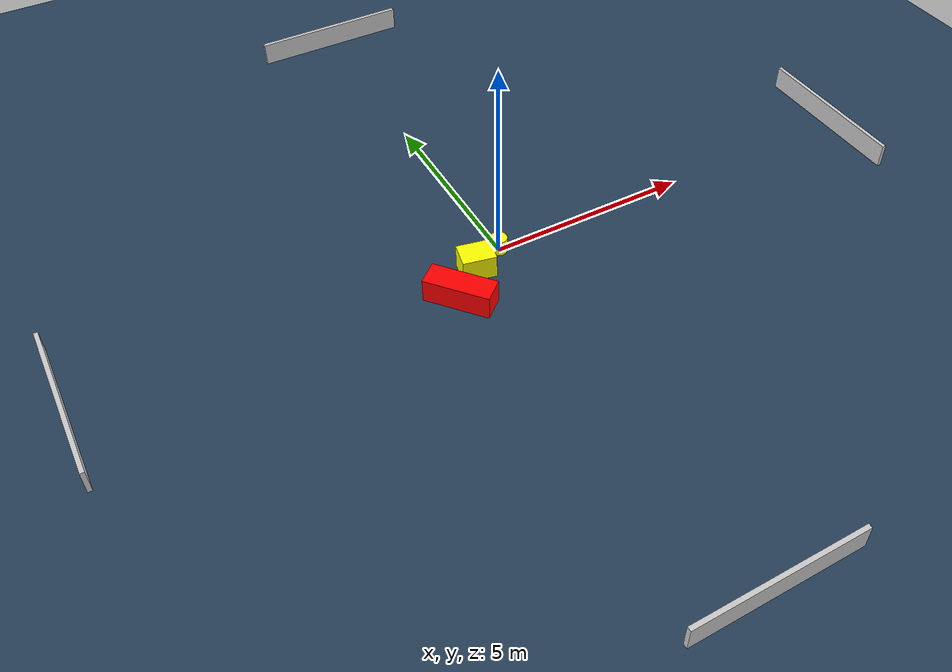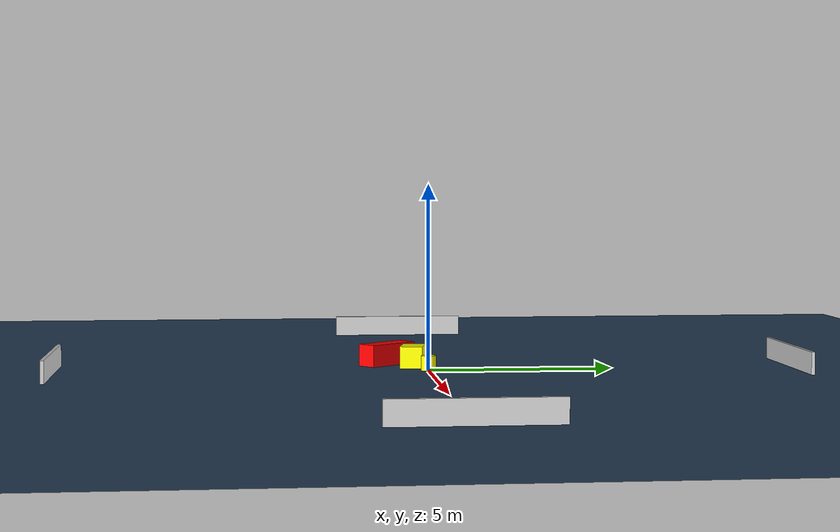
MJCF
<?xml version="1.0" ?>
<mujoco model="generated_environment">
  <option timestep="0.01" integrator="RK4" cone="elliptic"/>
  <default>
    <geom density="1"/>
  </default>
  <asset>
    <texture builtin="gradient" height="3072" name="skybox" rgb1="0.3 0.5 0.7" rgb2="0 0 0" type="skybox" width="512"/>
    <texture builtin="checker" height="300" name="groundplane" rgb1="0.2 0.3 0.4" rgb2="0.1 0.2 0.3" type="2d" width="300"/>
    <material name="groundplane" reflectance="0.2" texrepeat="5 5" texture="groundplane"/>
  </asset>
  <worldbody>
    <light dir="0 0 -1" directional="true" pos="0 0 1.5"/>
    <geom condim="3" friction="0.5 0.005 0.001" material="groundplane" name="floor" pos="0 0 0" size="0 0 0.05" type="plane"/>
    <body name="walls">
      <geom name="wall_1" condim="4" pos="-10.0 0.0 0.3" rgba="0.800000011920929 0.800000011920929 0.800000011920929 1.0" size="0.05 2.0 0.3" type="box"/>
      <geom name="wall_2" condim="4" pos="10.0 0.0 0.3" rgba="0.800000011920929 0.800000011920929 0.800000011920929 1.0" size="0.05 2.0 0.3" type="box"/>
      <geom name="wall_3" condim="4" pos="0.0 -10.0 0.3" rgba="0.800000011920929 0.800000011920929 0.800000011920929 1.0" size="2.0 0.05 0.3" type="box"/>
      <geom name="wall_4" condim="4" pos="0.0 10.0 0.3" rgba="0.800000011920929 0.800000011920929 0.800000011920929 1.0" size="2.0 0.05 0.3" type="box"/>
    </body>
    <body name="robot">
      <joint name="joint_x" type="slide" pos="0 0 0" axis="1 0 0"/>
      <joint name="joint_y" type="slide" pos="0 0 0" axis="0 1 0"/>
      <geom name="robot" type="cylinder" pos="0.0 0.0 0.2" size="0.2 0.2 0.0" mass="5.0" friction="1.0 0.005 0.0001" condim="4" rgba="1.0 1.0 0.0 1.0"/>
    </body>
    <body name="obstacle_1_movable">
      <geom name="obstacle_1_movable" condim="4" pos="-0.780392629619773 -0.3500591998378874 0.3" euler="0 0 347.992836445066" friction="0.0 0.005 0.001" rgba="1.0 1.0 0.0 1.0" size="0.40008709283917837 0.30683728966910195 0.3" type="box" mass="0.1"/>
      <joint type="free"/>
    </body>
    <body name="obstacle_2_static">
      <geom name="obstacle_2_static" condim="4" pos="-1.5320001076555916 -1.0024560968501521 0.3" euler="0 0 130.19282666880588" friction="0.0 0.005 0.001" rgba="1.0 0.0 0.0 1.0" size="0.7930886047989292 0.2950395540930548 0.3" type="box"/>
    </body>
  </worldbody>
  <actuator>
    <motor name="actuator_x" joint="joint_x" gear="1" ctrlrange="-1 1"/>
    <motor name="actuator_y" joint="joint_y" gear="1" ctrlrange="-1 1"/>
  </actuator>
</mujoco>
